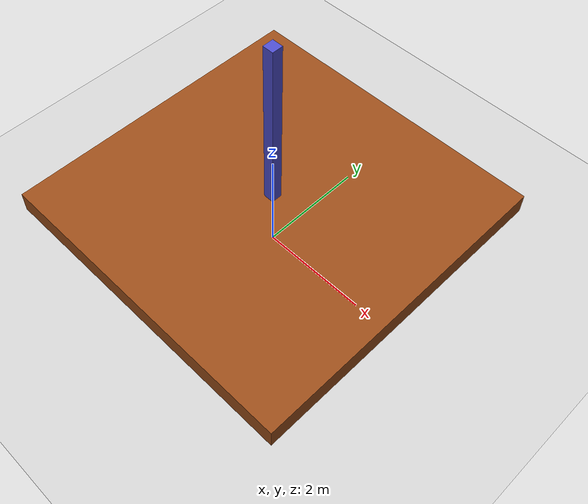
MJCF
<mujoco>
  <option gravity="0 0 -9.81"/>
  <worldbody>
    <body name="table" pos="0 0 1">
      <geom type="box" size="3 3 0.2" rgba="0.6 0.3 0.1 1" friction="0.7 0.7 0.7"/>
    </body>
    <body name="ground" pos="0 0 -0.1">
      <geom type="plane" size="30 30 0.1" rgba="0.8 0.8 0.8 1"/>
    </body>
    <body name="chain" pos="0 0 1.5">
      <geom type="box" size="0.1 0.1 3" density="1" rgba="0.3 0.3 0.8 1"/>
      <joint type="free"/>
    </body>
  </worldbody>
</mujoco>
